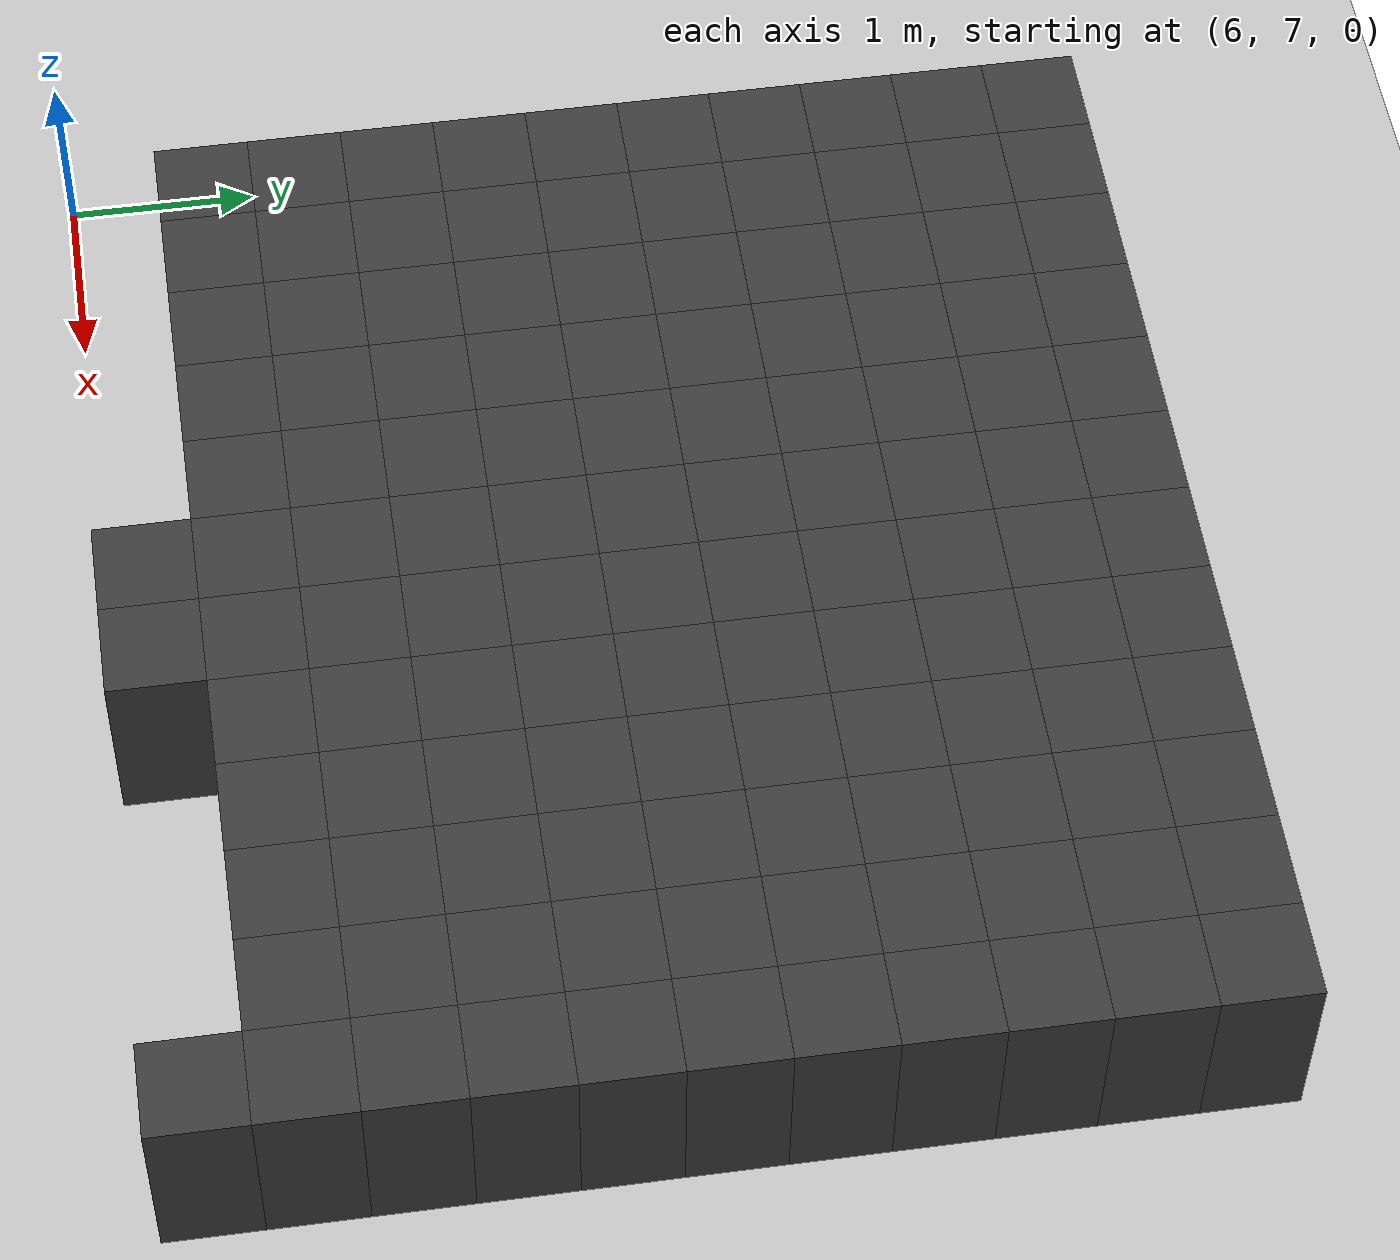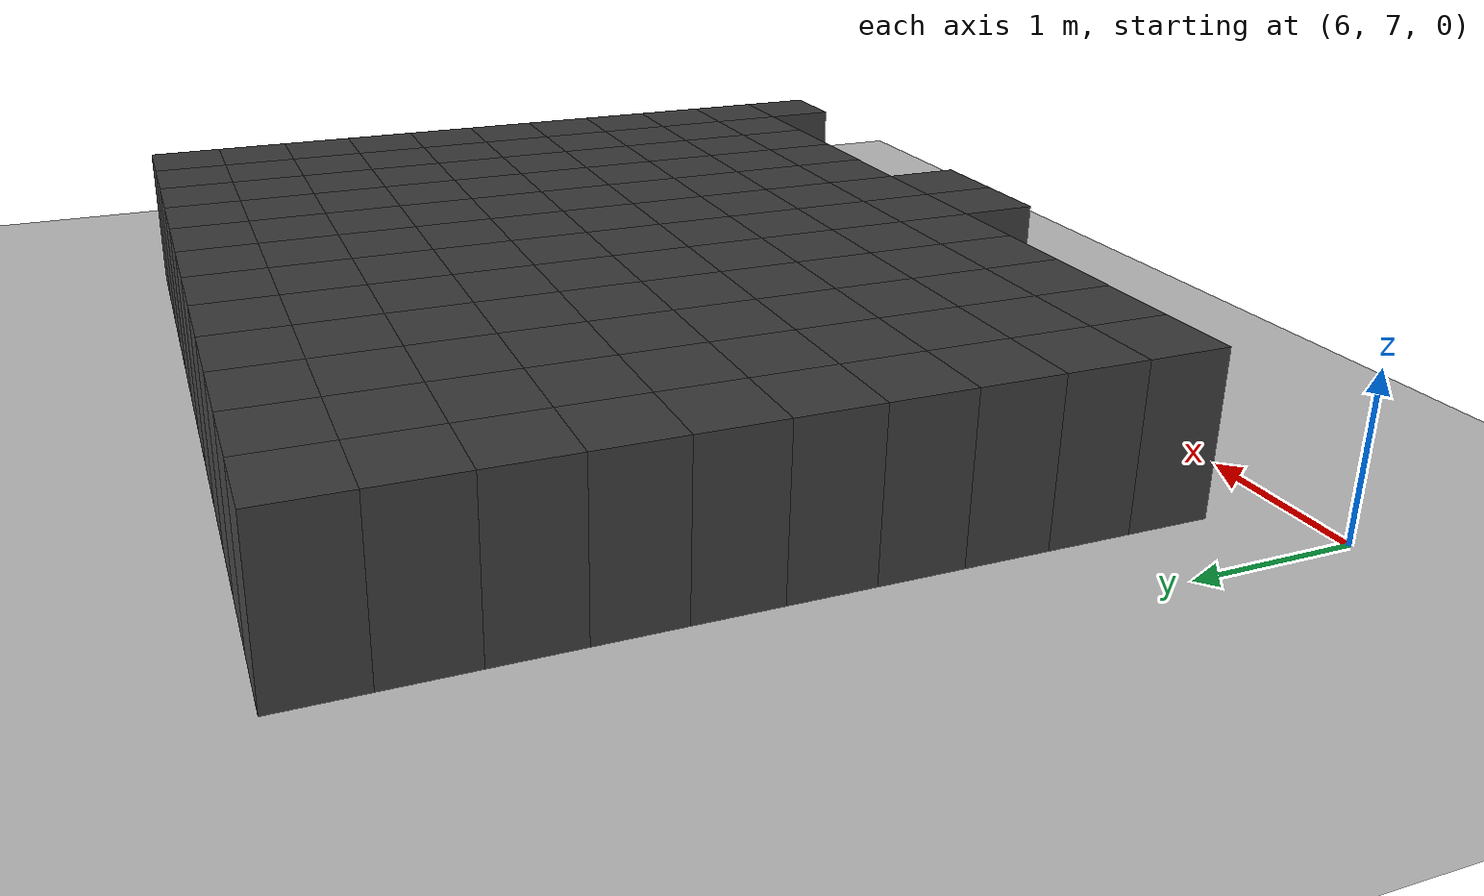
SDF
<sdf version="1.7">
 <world name="map_14074">
  <model name="ground_plane">
   <static>true</static>
   <link name="link">
    <collision name="collision">
     <geometry><plane><normal>0 0 1</normal><size>200 200</size></plane></geometry>
    </collision>
    <visual name="visual">
     <geometry><plane><normal>0 0 1</normal><size>200 200</size></plane></geometry>
     <material><ambient>0.8 0.8 0.8 1</ambient><diffuse>0.8 0.8 0.8 1</diffuse></material>
    </visual>
   </link>
  </model>
  <model name="maze_environment">
   <static>true</static>
   <link name="wall_38">
    <pose>6.750 12.250 0.500 0 0 0</pose>
    <collision name="col"><geometry><box><size>0.5 0.5 1.0</size></box></geometry></collision>
    <visual name="vis">
     <geometry><box><size>0.5 0.5 1.0</size></box></geometry>
     <material><ambient>0.15 0.15 0.15 1</ambient><diffuse>0.25 0.25 0.25 1</diffuse></material>
    </visual>
   </link>
   <link name="wall_39">
    <pose>7.250 12.250 0.500 0 0 0</pose>
    <collision name="col"><geometry><box><size>0.5 0.5 1.0</size></box></geometry></collision>
    <visual name="vis">
     <geometry><box><size>0.5 0.5 1.0</size></box></geometry>
     <material><ambient>0.15 0.15 0.15 1</ambient><diffuse>0.25 0.25 0.25 1</diffuse></material>
    </visual>
   </link>
   <link name="wall_40">
    <pose>7.750 12.250 0.500 0 0 0</pose>
    <collision name="col"><geometry><box><size>0.5 0.5 1.0</size></box></geometry></collision>
    <visual name="vis">
     <geometry><box><size>0.5 0.5 1.0</size></box></geometry>
     <material><ambient>0.15 0.15 0.15 1</ambient><diffuse>0.25 0.25 0.25 1</diffuse></material>
    </visual>
   </link>
   <link name="wall_41">
    <pose>8.250 12.250 0.500 0 0 0</pose>
    <collision name="col"><geometry><box><size>0.5 0.5 1.0</size></box></geometry></collision>
    <visual name="vis">
     <geometry><box><size>0.5 0.5 1.0</size></box></geometry>
     <material><ambient>0.15 0.15 0.15 1</ambient><diffuse>0.25 0.25 0.25 1</diffuse></material>
    </visual>
   </link>
   <link name="wall_42">
    <pose>8.750 12.250 0.500 0 0 0</pose>
    <collision name="col"><geometry><box><size>0.5 0.5 1.0</size></box></geometry></collision>
    <visual name="vis">
     <geometry><box><size>0.5 0.5 1.0</size></box></geometry>
     <material><ambient>0.15 0.15 0.15 1</ambient><diffuse>0.25 0.25 0.25 1</diffuse></material>
    </visual>
   </link>
   <link name="wall_43">
    <pose>9.250 12.250 0.500 0 0 0</pose>
    <collision name="col"><geometry><box><size>0.5 0.5 1.0</size></box></geometry></collision>
    <visual name="vis">
     <geometry><box><size>0.5 0.5 1.0</size></box></geometry>
     <material><ambient>0.15 0.15 0.15 1</ambient><diffuse>0.25 0.25 0.25 1</diffuse></material>
    </visual>
   </link>
   <link name="wall_44">
    <pose>9.750 12.250 0.500 0 0 0</pose>
    <collision name="col"><geometry><box><size>0.5 0.5 1.0</size></box></geometry></collision>
    <visual name="vis">
     <geometry><box><size>0.5 0.5 1.0</size></box></geometry>
     <material><ambient>0.15 0.15 0.15 1</ambient><diffuse>0.25 0.25 0.25 1</diffuse></material>
    </visual>
   </link>
   <link name="wall_45">
    <pose>10.250 12.250 0.500 0 0 0</pose>
    <collision name="col"><geometry><box><size>0.5 0.5 1.0</size></box></geometry></collision>
    <visual name="vis">
     <geometry><box><size>0.5 0.5 1.0</size></box></geometry>
     <material><ambient>0.15 0.15 0.15 1</ambient><diffuse>0.25 0.25 0.25 1</diffuse></material>
    </visual>
   </link>
   <link name="wall_46">
    <pose>10.750 12.250 0.500 0 0 0</pose>
    <collision name="col"><geometry><box><size>0.5 0.5 1.0</size></box></geometry></collision>
    <visual name="vis">
     <geometry><box><size>0.5 0.5 1.0</size></box></geometry>
     <material><ambient>0.15 0.15 0.15 1</ambient><diffuse>0.25 0.25 0.25 1</diffuse></material>
    </visual>
   </link>
   <link name="wall_47">
    <pose>11.250 12.250 0.500 0 0 0</pose>
    <collision name="col"><geometry><box><size>0.5 0.5 1.0</size></box></geometry></collision>
    <visual name="vis">
     <geometry><box><size>0.5 0.5 1.0</size></box></geometry>
     <material><ambient>0.15 0.15 0.15 1</ambient><diffuse>0.25 0.25 0.25 1</diffuse></material>
    </visual>
   </link>
   <link name="wall_48">
    <pose>11.750 12.250 0.500 0 0 0</pose>
    <collision name="col"><geometry><box><size>0.5 0.5 1.0</size></box></geometry></collision>
    <visual name="vis">
     <geometry><box><size>0.5 0.5 1.0</size></box></geometry>
     <material><ambient>0.15 0.15 0.15 1</ambient><diffuse>0.25 0.25 0.25 1</diffuse></material>
    </visual>
   </link>
   <link name="wall_49">
    <pose>12.250 12.250 0.500 0 0 0</pose>
    <collision name="col"><geometry><box><size>0.5 0.5 1.0</size></box></geometry></collision>
    <visual name="vis">
     <geometry><box><size>0.5 0.5 1.0</size></box></geometry>
     <material><ambient>0.15 0.15 0.15 1</ambient><diffuse>0.25 0.25 0.25 1</diffuse></material>
    </visual>
   </link>
   <link name="wall_85">
    <pose>6.750 11.750 0.500 0 0 0</pose>
    <collision name="col"><geometry><box><size>0.5 0.5 1.0</size></box></geometry></collision>
    <visual name="vis">
     <geometry><box><size>0.5 0.5 1.0</size></box></geometry>
     <material><ambient>0.15 0.15 0.15 1</ambient><diffuse>0.25 0.25 0.25 1</diffuse></material>
    </visual>
   </link>
   <link name="wall_86">
    <pose>7.250 11.750 0.500 0 0 0</pose>
    <collision name="col"><geometry><box><size>0.5 0.5 1.0</size></box></geometry></collision>
    <visual name="vis">
     <geometry><box><size>0.5 0.5 1.0</size></box></geometry>
     <material><ambient>0.15 0.15 0.15 1</ambient><diffuse>0.25 0.25 0.25 1</diffuse></material>
    </visual>
   </link>
   <link name="wall_87">
    <pose>7.750 11.750 0.500 0 0 0</pose>
    <collision name="col"><geometry><box><size>0.5 0.5 1.0</size></box></geometry></collision>
    <visual name="vis">
     <geometry><box><size>0.5 0.5 1.0</size></box></geometry>
     <material><ambient>0.15 0.15 0.15 1</ambient><diffuse>0.25 0.25 0.25 1</diffuse></material>
    </visual>
   </link>
   <link name="wall_88">
    <pose>8.250 11.750 0.500 0 0 0</pose>
    <collision name="col"><geometry><box><size>0.5 0.5 1.0</size></box></geometry></collision>
    <visual name="vis">
     <geometry><box><size>0.5 0.5 1.0</size></box></geometry>
     <material><ambient>0.15 0.15 0.15 1</ambient><diffuse>0.25 0.25 0.25 1</diffuse></material>
    </visual>
   </link>
   <link name="wall_89">
    <pose>8.750 11.750 0.500 0 0 0</pose>
    <collision name="col"><geometry><box><size>0.5 0.5 1.0</size></box></geometry></collision>
    <visual name="vis">
     <geometry><box><size>0.5 0.5 1.0</size></box></geometry>
     <material><ambient>0.15 0.15 0.15 1</ambient><diffuse>0.25 0.25 0.25 1</diffuse></material>
    </visual>
   </link>
   <link name="wall_90">
    <pose>9.250 11.750 0.500 0 0 0</pose>
    <collision name="col"><geometry><box><size>0.5 0.5 1.0</size></box></geometry></collision>
    <visual name="vis">
     <geometry><box><size>0.5 0.5 1.0</size></box></geometry>
     <material><ambient>0.15 0.15 0.15 1</ambient><diffuse>0.25 0.25 0.25 1</diffuse></material>
    </visual>
   </link>
   <link name="wall_91">
    <pose>9.750 11.750 0.500 0 0 0</pose>
    <collision name="col"><geometry><box><size>0.5 0.5 1.0</size></box></geometry></collision>
    <visual name="vis">
     <geometry><box><size>0.5 0.5 1.0</size></box></geometry>
     <material><ambient>0.15 0.15 0.15 1</ambient><diffuse>0.25 0.25 0.25 1</diffuse></material>
    </visual>
   </link>
   <link name="wall_92">
    <pose>10.250 11.750 0.500 0 0 0</pose>
    <collision name="col"><geometry><box><size>0.5 0.5 1.0</size></box></geometry></collision>
    <visual name="vis">
     <geometry><box><size>0.5 0.5 1.0</size></box></geometry>
     <material><ambient>0.15 0.15 0.15 1</ambient><diffuse>0.25 0.25 0.25 1</diffuse></material>
    </visual>
   </link>
   <link name="wall_93">
    <pose>10.750 11.750 0.500 0 0 0</pose>
    <collision name="col"><geometry><box><size>0.5 0.5 1.0</size></box></geometry></collision>
    <visual name="vis">
     <geometry><box><size>0.5 0.5 1.0</size></box></geometry>
     <material><ambient>0.15 0.15 0.15 1</ambient><diffuse>0.25 0.25 0.25 1</diffuse></material>
    </visual>
   </link>
   <link name="wall_94">
    <pose>11.250 11.750 0.500 0 0 0</pose>
    <collision name="col"><geometry><box><size>0.5 0.5 1.0</size></box></geometry></collision>
    <visual name="vis">
     <geometry><box><size>0.5 0.5 1.0</size></box></geometry>
     <material><ambient>0.15 0.15 0.15 1</ambient><diffuse>0.25 0.25 0.25 1</diffuse></material>
    </visual>
   </link>
   <link name="wall_95">
    <pose>11.750 11.750 0.500 0 0 0</pose>
    <collision name="col"><geometry><box><size>0.5 0.5 1.0</size></box></geometry></collision>
    <visual name="vis">
     <geometry><box><size>0.5 0.5 1.0</size></box></geometry>
     <material><ambient>0.15 0.15 0.15 1</ambient><diffuse>0.25 0.25 0.25 1</diffuse></material>
    </visual>
   </link>
   <link name="wall_96">
    <pose>12.250 11.750 0.500 0 0 0</pose>
    <collision name="col"><geometry><box><size>0.5 0.5 1.0</size></box></geometry></collision>
    <visual name="vis">
     <geometry><box><size>0.5 0.5 1.0</size></box></geometry>
     <material><ambient>0.15 0.15 0.15 1</ambient><diffuse>0.25 0.25 0.25 1</diffuse></material>
    </visual>
   </link>
   <link name="wall_132">
    <pose>6.750 11.250 0.500 0 0 0</pose>
    <collision name="col"><geometry><box><size>0.5 0.5 1.0</size></box></geometry></collision>
    <visual name="vis">
     <geometry><box><size>0.5 0.5 1.0</size></box></geometry>
     <material><ambient>0.15 0.15 0.15 1</ambient><diffuse>0.25 0.25 0.25 1</diffuse></material>
    </visual>
   </link>
   <link name="wall_133">
    <pose>7.250 11.250 0.500 0 0 0</pose>
    <collision name="col"><geometry><box><size>0.5 0.5 1.0</size></box></geometry></collision>
    <visual name="vis">
     <geometry><box><size>0.5 0.5 1.0</size></box></geometry>
     <material><ambient>0.15 0.15 0.15 1</ambient><diffuse>0.25 0.25 0.25 1</diffuse></material>
    </visual>
   </link>
   <link name="wall_134">
    <pose>7.750 11.250 0.500 0 0 0</pose>
    <collision name="col"><geometry><box><size>0.5 0.5 1.0</size></box></geometry></collision>
    <visual name="vis">
     <geometry><box><size>0.5 0.5 1.0</size></box></geometry>
     <material><ambient>0.15 0.15 0.15 1</ambient><diffuse>0.25 0.25 0.25 1</diffuse></material>
    </visual>
   </link>
   <link name="wall_135">
    <pose>8.250 11.250 0.500 0 0 0</pose>
    <collision name="col"><geometry><box><size>0.5 0.5 1.0</size></box></geometry></collision>
    <visual name="vis">
     <geometry><box><size>0.5 0.5 1.0</size></box></geometry>
     <material><ambient>0.15 0.15 0.15 1</ambient><diffuse>0.25 0.25 0.25 1</diffuse></material>
    </visual>
   </link>
   <link name="wall_136">
    <pose>8.750 11.250 0.500 0 0 0</pose>
    <collision name="col"><geometry><box><size>0.5 0.5 1.0</size></box></geometry></collision>
    <visual name="vis">
     <geometry><box><size>0.5 0.5 1.0</size></box></geometry>
     <material><ambient>0.15 0.15 0.15 1</ambient><diffuse>0.25 0.25 0.25 1</diffuse></material>
    </visual>
   </link>
   <link name="wall_137">
    <pose>9.250 11.250 0.500 0 0 0</pose>
    <collision name="col"><geometry><box><size>0.5 0.5 1.0</size></box></geometry></collision>
    <visual name="vis">
     <geometry><box><size>0.5 0.5 1.0</size></box></geometry>
     <material><ambient>0.15 0.15 0.15 1</ambient><diffuse>0.25 0.25 0.25 1</diffuse></material>
    </visual>
   </link>
   <link name="wall_138">
    <pose>9.750 11.250 0.500 0 0 0</pose>
    <collision name="col"><geometry><box><size>0.5 0.5 1.0</size></box></geometry></collision>
    <visual name="vis">
     <geometry><box><size>0.5 0.5 1.0</size></box></geometry>
     <material><ambient>0.15 0.15 0.15 1</ambient><diffuse>0.25 0.25 0.25 1</diffuse></material>
    </visual>
   </link>
   <link name="wall_139">
    <pose>10.250 11.250 0.500 0 0 0</pose>
    <collision name="col"><geometry><box><size>0.5 0.5 1.0</size></box></geometry></collision>
    <visual name="vis">
     <geometry><box><size>0.5 0.5 1.0</size></box></geometry>
     <material><ambient>0.15 0.15 0.15 1</ambient><diffuse>0.25 0.25 0.25 1</diffuse></material>
    </visual>
   </link>
   <link name="wall_140">
    <pose>10.750 11.250 0.500 0 0 0</pose>
    <collision name="col"><geometry><box><size>0.5 0.5 1.0</size></box></geometry></collision>
    <visual name="vis">
     <geometry><box><size>0.5 0.5 1.0</size></box></geometry>
     <material><ambient>0.15 0.15 0.15 1</ambient><diffuse>0.25 0.25 0.25 1</diffuse></material>
    </visual>
   </link>
   <link name="wall_141">
    <pose>11.250 11.250 0.500 0 0 0</pose>
    <collision name="col"><geometry><box><size>0.5 0.5 1.0</size></box></geometry></collision>
    <visual name="vis">
     <geometry><box><size>0.5 0.5 1.0</size></box></geometry>
     <material><ambient>0.15 0.15 0.15 1</ambient><diffuse>0.25 0.25 0.25 1</diffuse></material>
    </visual>
   </link>
   <link name="wall_142">
    <pose>11.750 11.250 0.500 0 0 0</pose>
    <collision name="col"><geometry><box><size>0.5 0.5 1.0</size></box></geometry></collision>
    <visual name="vis">
     <geometry><box><size>0.5 0.5 1.0</size></box></geometry>
     <material><ambient>0.15 0.15 0.15 1</ambient><diffuse>0.25 0.25 0.25 1</diffuse></material>
    </visual>
   </link>
   <link name="wall_143">
    <pose>12.250 11.250 0.500 0 0 0</pose>
    <collision name="col"><geometry><box><size>0.5 0.5 1.0</size></box></geometry></collision>
    <visual name="vis">
     <geometry><box><size>0.5 0.5 1.0</size></box></geometry>
     <material><ambient>0.15 0.15 0.15 1</ambient><diffuse>0.25 0.25 0.25 1</diffuse></material>
    </visual>
   </link>
   <link name="wall_179">
    <pose>6.750 10.750 0.500 0 0 0</pose>
    <collision name="col"><geometry><box><size>0.5 0.5 1.0</size></box></geometry></collision>
    <visual name="vis">
     <geometry><box><size>0.5 0.5 1.0</size></box></geometry>
     <material><ambient>0.15 0.15 0.15 1</ambient><diffuse>0.25 0.25 0.25 1</diffuse></material>
    </visual>
   </link>
   <link name="wall_180">
    <pose>7.250 10.750 0.500 0 0 0</pose>
    <collision name="col"><geometry><box><size>0.5 0.5 1.0</size></box></geometry></collision>
    <visual name="vis">
     <geometry><box><size>0.5 0.5 1.0</size></box></geometry>
     <material><ambient>0.15 0.15 0.15 1</ambient><diffuse>0.25 0.25 0.25 1</diffuse></material>
    </visual>
   </link>
   <link name="wall_181">
    <pose>7.750 10.750 0.500 0 0 0</pose>
    <collision name="col"><geometry><box><size>0.5 0.5 1.0</size></box></geometry></collision>
    <visual name="vis">
     <geometry><box><size>0.5 0.5 1.0</size></box></geometry>
     <material><ambient>0.15 0.15 0.15 1</ambient><diffuse>0.25 0.25 0.25 1</diffuse></material>
    </visual>
   </link>
   <link name="wall_182">
    <pose>8.250 10.750 0.500 0 0 0</pose>
    <collision name="col"><geometry><box><size>0.5 0.5 1.0</size></box></geometry></collision>
    <visual name="vis">
     <geometry><box><size>0.5 0.5 1.0</size></box></geometry>
     <material><ambient>0.15 0.15 0.15 1</ambient><diffuse>0.25 0.25 0.25 1</diffuse></material>
    </visual>
   </link>
   <link name="wall_183">
    <pose>8.750 10.750 0.500 0 0 0</pose>
    <collision name="col"><geometry><box><size>0.5 0.5 1.0</size></box></geometry></collision>
    <visual name="vis">
     <geometry><box><size>0.5 0.5 1.0</size></box></geometry>
     <material><ambient>0.15 0.15 0.15 1</ambient><diffuse>0.25 0.25 0.25 1</diffuse></material>
    </visual>
   </link>
   <link name="wall_184">
    <pose>9.250 10.750 0.500 0 0 0</pose>
    <collision name="col"><geometry><box><size>0.5 0.5 1.0</size></box></geometry></collision>
    <visual name="vis">
     <geometry><box><size>0.5 0.5 1.0</size></box></geometry>
     <material><ambient>0.15 0.15 0.15 1</ambient><diffuse>0.25 0.25 0.25 1</diffuse></material>
    </visual>
   </link>
   <link name="wall_185">
    <pose>9.750 10.750 0.500 0 0 0</pose>
    <collision name="col"><geometry><box><size>0.5 0.5 1.0</size></box></geometry></collision>
    <visual name="vis">
     <geometry><box><size>0.5 0.5 1.0</size></box></geometry>
     <material><ambient>0.15 0.15 0.15 1</ambient><diffuse>0.25 0.25 0.25 1</diffuse></material>
    </visual>
   </link>
   <link name="wall_186">
    <pose>10.250 10.750 0.500 0 0 0</pose>
    <collision name="col"><geometry><box><size>0.5 0.5 1.0</size></box></geometry></collision>
    <visual name="vis">
     <geometry><box><size>0.5 0.5 1.0</size></box></geometry>
     <material><ambient>0.15 0.15 0.15 1</ambient><diffuse>0.25 0.25 0.25 1</diffuse></material>
    </visual>
   </link>
   <link name="wall_187">
    <pose>10.750 10.750 0.500 0 0 0</pose>
    <collision name="col"><geometry><box><size>0.5 0.5 1.0</size></box></geometry></collision>
    <visual name="vis">
     <geometry><box><size>0.5 0.5 1.0</size></box></geometry>
     <material><ambient>0.15 0.15 0.15 1</ambient><diffuse>0.25 0.25 0.25 1</diffuse></material>
    </visual>
   </link>
   <link name="wall_188">
    <pose>11.250 10.750 0.500 0 0 0</pose>
    <collision name="col"><geometry><box><size>0.5 0.5 1.0</size></box></geometry></collision>
    <visual name="vis">
     <geometry><box><size>0.5 0.5 1.0</size></box></geometry>
     <material><ambient>0.15 0.15 0.15 1</ambient><diffuse>0.25 0.25 0.25 1</diffuse></material>
    </visual>
   </link>
   <link name="wall_189">
    <pose>11.750 10.750 0.500 0 0 0</pose>
    <collision name="col"><geometry><box><size>0.5 0.5 1.0</size></box></geometry></collision>
    <visual name="vis">
     <geometry><box><size>0.5 0.5 1.0</size></box></geometry>
     <material><ambient>0.15 0.15 0.15 1</ambient><diffuse>0.25 0.25 0.25 1</diffuse></material>
    </visual>
   </link>
   <link name="wall_190">
    <pose>12.250 10.750 0.500 0 0 0</pose>
    <collision name="col"><geometry><box><size>0.5 0.5 1.0</size></box></geometry></collision>
    <visual name="vis">
     <geometry><box><size>0.5 0.5 1.0</size></box></geometry>
     <material><ambient>0.15 0.15 0.15 1</ambient><diffuse>0.25 0.25 0.25 1</diffuse></material>
    </visual>
   </link>
   <link name="wall_228">
    <pose>6.750 10.250 0.500 0 0 0</pose>
    <collision name="col"><geometry><box><size>0.5 0.5 1.0</size></box></geometry></collision>
    <visual name="vis">
     <geometry><box><size>0.5 0.5 1.0</size></box></geometry>
     <material><ambient>0.15 0.15 0.15 1</ambient><diffuse>0.25 0.25 0.25 1</diffuse></material>
    </visual>
   </link>
   <link name="wall_229">
    <pose>7.250 10.250 0.500 0 0 0</pose>
    <collision name="col"><geometry><box><size>0.5 0.5 1.0</size></box></geometry></collision>
    <visual name="vis">
     <geometry><box><size>0.5 0.5 1.0</size></box></geometry>
     <material><ambient>0.15 0.15 0.15 1</ambient><diffuse>0.25 0.25 0.25 1</diffuse></material>
    </visual>
   </link>
   <link name="wall_230">
    <pose>7.750 10.250 0.500 0 0 0</pose>
    <collision name="col"><geometry><box><size>0.5 0.5 1.0</size></box></geometry></collision>
    <visual name="vis">
     <geometry><box><size>0.5 0.5 1.0</size></box></geometry>
     <material><ambient>0.15 0.15 0.15 1</ambient><diffuse>0.25 0.25 0.25 1</diffuse></material>
    </visual>
   </link>
   <link name="wall_231">
    <pose>8.250 10.250 0.500 0 0 0</pose>
    <collision name="col"><geometry><box><size>0.5 0.5 1.0</size></box></geometry></collision>
    <visual name="vis">
     <geometry><box><size>0.5 0.5 1.0</size></box></geometry>
     <material><ambient>0.15 0.15 0.15 1</ambient><diffuse>0.25 0.25 0.25 1</diffuse></material>
    </visual>
   </link>
   <link name="wall_232">
    <pose>8.750 10.250 0.500 0 0 0</pose>
    <collision name="col"><geometry><box><size>0.5 0.5 1.0</size></box></geometry></collision>
    <visual name="vis">
     <geometry><box><size>0.5 0.5 1.0</size></box></geometry>
     <material><ambient>0.15 0.15 0.15 1</ambient><diffuse>0.25 0.25 0.25 1</diffuse></material>
    </visual>
   </link>
   <link name="wall_233">
    <pose>9.250 10.250 0.500 0 0 0</pose>
    <collision name="col"><geometry><box><size>0.5 0.5 1.0</size></box></geometry></collision>
    <visual name="vis">
     <geometry><box><size>0.5 0.5 1.0</size></box></geometry>
     <material><ambient>0.15 0.15 0.15 1</ambient><diffuse>0.25 0.25 0.25 1</diffuse></material>
    </visual>
   </link>
   <link name="wall_234">
    <pose>9.750 10.250 0.500 0 0 0</pose>
    <collision name="col"><geometry><box><size>0.5 0.5 1.0</size></box></geometry></collision>
    <visual name="vis">
     <geometry><box><size>0.5 0.5 1.0</size></box></geometry>
     <material><ambient>0.15 0.15 0.15 1</ambient><diffuse>0.25 0.25 0.25 1</diffuse></material>
    </visual>
   </link>
   <link name="wall_235">
    <pose>10.250 10.250 0.500 0 0 0</pose>
    <collision name="col"><geometry><box><size>0.5 0.5 1.0</size></box></geometry></collision>
    <visual name="vis">
     <geometry><box><size>0.5 0.5 1.0</size></box></geometry>
     <material><ambient>0.15 0.15 0.15 1</ambient><diffuse>0.25 0.25 0.25 1</diffuse></material>
    </visual>
   </link>
   <link name="wall_236">
    <pose>10.750 10.250 0.500 0 0 0</pose>
    <collision name="col"><geometry><box><size>0.5 0.5 1.0</size></box></geometry></collision>
    <visual name="vis">
     <geometry><box><size>0.5 0.5 1.0</size></box></geometry>
     <material><ambient>0.15 0.15 0.15 1</ambient><diffuse>0.25 0.25 0.25 1</diffuse></material>
    </visual>
   </link>
   <link name="wall_237">
    <pose>11.250 10.250 0.500 0 0 0</pose>
    <collision name="col"><geometry><box><size>0.5 0.5 1.0</size></box></geometry></collision>
    <visual name="vis">
     <geometry><box><size>0.5 0.5 1.0</size></box></geometry>
     <material><ambient>0.15 0.15 0.15 1</ambient><diffuse>0.25 0.25 0.25 1</diffuse></material>
    </visual>
   </link>
   <link name="wall_238">
    <pose>11.750 10.250 0.500 0 0 0</pose>
    <collision name="col"><geometry><box><size>0.5 0.5 1.0</size></box></geometry></collision>
    <visual name="vis">
     <geometry><box><size>0.5 0.5 1.0</size></box></geometry>
     <material><ambient>0.15 0.15 0.15 1</ambient><diffuse>0.25 0.25 0.25 1</diffuse></material>
    </visual>
   </link>
   <link name="wall_239">
    <pose>12.250 10.250 0.500 0 0 0</pose>
    <collision name="col"><geometry><box><size>0.5 0.5 1.0</size></box></geometry></collision>
    <visual name="vis">
     <geometry><box><size>0.5 0.5 1.0</size></box></geometry>
     <material><ambient>0.15 0.15 0.15 1</ambient><diffuse>0.25 0.25 0.25 1</diffuse></material>
    </visual>
   </link>
   <link name="wall_277">
    <pose>6.750 9.750 0.500 0 0 0</pose>
    <collision name="col"><geometry><box><size>0.5 0.5 1.0</size></box></geometry></collision>
    <visual name="vis">
     <geometry><box><size>0.5 0.5 1.0</size></box></geometry>
     <material><ambient>0.15 0.15 0.15 1</ambient><diffuse>0.25 0.25 0.25 1</diffuse></material>
    </visual>
   </link>
   <link name="wall_278">
    <pose>7.250 9.750 0.500 0 0 0</pose>
    <collision name="col"><geometry><box><size>0.5 0.5 1.0</size></box></geometry></collision>
    <visual name="vis">
     <geometry><box><size>0.5 0.5 1.0</size></box></geometry>
     <material><ambient>0.15 0.15 0.15 1</ambient><diffuse>0.25 0.25 0.25 1</diffuse></material>
    </visual>
   </link>
   <link name="wall_279">
    <pose>7.750 9.750 0.500 0 0 0</pose>
    <collision name="col"><geometry><box><size>0.5 0.5 1.0</size></box></geometry></collision>
    <visual name="vis">
     <geometry><box><size>0.5 0.5 1.0</size></box></geometry>
     <material><ambient>0.15 0.15 0.15 1</ambient><diffuse>0.25 0.25 0.25 1</diffuse></material>
    </visual>
   </link>
   <link name="wall_280">
    <pose>8.250 9.750 0.500 0 0 0</pose>
    <collision name="col"><geometry><box><size>0.5 0.5 1.0</size></box></geometry></collision>
    <visual name="vis">
     <geometry><box><size>0.5 0.5 1.0</size></box></geometry>
     <material><ambient>0.15 0.15 0.15 1</ambient><diffuse>0.25 0.25 0.25 1</diffuse></material>
    </visual>
   </link>
   <link name="wall_281">
    <pose>8.750 9.750 0.500 0 0 0</pose>
    <collision name="col"><geometry><box><size>0.5 0.5 1.0</size></box></geometry></collision>
    <visual name="vis">
     <geometry><box><size>0.5 0.5 1.0</size></box></geometry>
     <material><ambient>0.15 0.15 0.15 1</ambient><diffuse>0.25 0.25 0.25 1</diffuse></material>
    </visual>
   </link>
   <link name="wall_282">
    <pose>9.250 9.750 0.500 0 0 0</pose>
    <collision name="col"><geometry><box><size>0.5 0.5 1.0</size></box></geometry></collision>
    <visual name="vis">
     <geometry><box><size>0.5 0.5 1.0</size></box></geometry>
     <material><ambient>0.15 0.15 0.15 1</ambient><diffuse>0.25 0.25 0.25 1</diffuse></material>
    </visual>
   </link>
   <link name="wall_283">
    <pose>9.750 9.750 0.500 0 0 0</pose>
    <collision name="col"><geometry><box><size>0.5 0.5 1.0</size></box></geometry></collision>
    <visual name="vis">
     <geometry><box><size>0.5 0.5 1.0</size></box></geometry>
     <material><ambient>0.15 0.15 0.15 1</ambient><diffuse>0.25 0.25 0.25 1</diffuse></material>
    </visual>
   </link>
   <link name="wall_284">
    <pose>10.250 9.750 0.500 0 0 0</pose>
    <collision name="col"><geometry><box><size>0.5 0.5 1.0</size></box></geometry></collision>
    <visual name="vis">
     <geometry><box><size>0.5 0.5 1.0</size></box></geometry>
     <material><ambient>0.15 0.15 0.15 1</ambient><diffuse>0.25 0.25 0.25 1</diffuse></material>
    </visual>
   </link>
   <link name="wall_285">
    <pose>10.750 9.750 0.500 0 0 0</pose>
    <collision name="col"><geometry><box><size>0.5 0.5 1.0</size></box></geometry></collision>
    <visual name="vis">
     <geometry><box><size>0.5 0.5 1.0</size></box></geometry>
     <material><ambient>0.15 0.15 0.15 1</ambient><diffuse>0.25 0.25 0.25 1</diffuse></material>
    </visual>
   </link>
   <link name="wall_286">
    <pose>11.250 9.750 0.500 0 0 0</pose>
    <collision name="col"><geometry><box><size>0.5 0.5 1.0</size></box></geometry></collision>
    <visual name="vis">
     <geometry><box><size>0.5 0.5 1.0</size></box></geometry>
     <material><ambient>0.15 0.15 0.15 1</ambient><diffuse>0.25 0.25 0.25 1</diffuse></material>
    </visual>
   </link>
   <link name="wall_287">
    <pose>11.750 9.750 0.500 0 0 0</pose>
    <collision name="col"><geometry><box><size>0.5 0.5 1.0</size></box></geometry></collision>
    <visual name="vis">
     <geometry><box><size>0.5 0.5 1.0</size></box></geometry>
     <material><ambient>0.15 0.15 0.15 1</ambient><diffuse>0.25 0.25 0.25 1</diffuse></material>
    </visual>
   </link>
   <link name="wall_288">
    <pose>12.250 9.750 0.500 0 0 0</pose>
    <collision name="col"><geometry><box><size>0.5 0.5 1.0</size></box></geometry></collision>
    <visual name="vis">
     <geometry><box><size>0.5 0.5 1.0</size></box></geometry>
     <material><ambient>0.15 0.15 0.15 1</ambient><diffuse>0.25 0.25 0.25 1</diffuse></material>
    </visual>
   </link>
   <link name="wall_326">
    <pose>6.750 9.250 0.500 0 0 0</pose>
    <collision name="col"><geometry><box><size>0.5 0.5 1.0</size></box></geometry></collision>
    <visual name="vis">
     <geometry><box><size>0.5 0.5 1.0</size></box></geometry>
     <material><ambient>0.15 0.15 0.15 1</ambient><diffuse>0.25 0.25 0.25 1</diffuse></material>
    </visual>
   </link>
   <link name="wall_327">
    <pose>7.250 9.250 0.500 0 0 0</pose>
    <collision name="col"><geometry><box><size>0.5 0.5 1.0</size></box></geometry></collision>
    <visual name="vis">
     <geometry><box><size>0.5 0.5 1.0</size></box></geometry>
     <material><ambient>0.15 0.15 0.15 1</ambient><diffuse>0.25 0.25 0.25 1</diffuse></material>
    </visual>
   </link>
   <link name="wall_328">
    <pose>7.750 9.250 0.500 0 0 0</pose>
    <collision name="col"><geometry><box><size>0.5 0.5 1.0</size></box></geometry></collision>
    <visual name="vis">
     <geometry><box><size>0.5 0.5 1.0</size></box></geometry>
     <material><ambient>0.15 0.15 0.15 1</ambient><diffuse>0.25 0.25 0.25 1</diffuse></material>
    </visual>
   </link>
   <link name="wall_329">
    <pose>8.250 9.250 0.500 0 0 0</pose>
    <collision name="col"><geometry><box><size>0.5 0.5 1.0</size></box></geometry></collision>
    <visual name="vis">
     <geometry><box><size>0.5 0.5 1.0</size></box></geometry>
     <material><ambient>0.15 0.15 0.15 1</ambient><diffuse>0.25 0.25 0.25 1</diffuse></material>
    </visual>
   </link>
   <link name="wall_330">
    <pose>8.750 9.250 0.500 0 0 0</pose>
    <collision name="col"><geometry><box><size>0.5 0.5 1.0</size></box></geometry></collision>
    <visual name="vis">
     <geometry><box><size>0.5 0.5 1.0</size></box></geometry>
     <material><ambient>0.15 0.15 0.15 1</ambient><diffuse>0.25 0.25 0.25 1</diffuse></material>
    </visual>
   </link>
   <link name="wall_331">
    <pose>9.250 9.250 0.500 0 0 0</pose>
    <collision name="col"><geometry><box><size>0.5 0.5 1.0</size></box></geometry></collision>
    <visual name="vis">
     <geometry><box><size>0.5 0.5 1.0</size></box></geometry>
     <material><ambient>0.15 0.15 0.15 1</ambient><diffuse>0.25 0.25 0.25 1</diffuse></material>
    </visual>
   </link>
   <link name="wall_332">
    <pose>9.750 9.250 0.500 0 0 0</pose>
    <collision name="col"><geometry><box><size>0.5 0.5 1.0</size></box></geometry></collision>
    <visual name="vis">
     <geometry><box><size>0.5 0.5 1.0</size></box></geometry>
     <material><ambient>0.15 0.15 0.15 1</ambient><diffuse>0.25 0.25 0.25 1</diffuse></material>
    </visual>
   </link>
   <link name="wall_333">
    <pose>10.250 9.250 0.500 0 0 0</pose>
    <collision name="col"><geometry><box><size>0.5 0.5 1.0</size></box></geometry></collision>
    <visual name="vis">
     <geometry><box><size>0.5 0.5 1.0</size></box></geometry>
     <material><ambient>0.15 0.15 0.15 1</ambient><diffuse>0.25 0.25 0.25 1</diffuse></material>
    </visual>
   </link>
   <link name="wall_334">
    <pose>10.750 9.250 0.500 0 0 0</pose>
    <collision name="col"><geometry><box><size>0.5 0.5 1.0</size></box></geometry></collision>
    <visual name="vis">
     <geometry><box><size>0.5 0.5 1.0</size></box></geometry>
     <material><ambient>0.15 0.15 0.15 1</ambient><diffuse>0.25 0.25 0.25 1</diffuse></material>
    </visual>
   </link>
   <link name="wall_335">
    <pose>11.250 9.250 0.500 0 0 0</pose>
    <collision name="col"><geometry><box><size>0.5 0.5 1.0</size></box></geometry></collision>
    <visual name="vis">
     <geometry><box><size>0.5 0.5 1.0</size></box></geometry>
     <material><ambient>0.15 0.15 0.15 1</ambient><diffuse>0.25 0.25 0.25 1</diffuse></material>
    </visual>
   </link>
   <link name="wall_336">
    <pose>11.750 9.250 0.500 0 0 0</pose>
    <collision name="col"><geometry><box><size>0.5 0.5 1.0</size></box></geometry></collision>
    <visual name="vis">
     <geometry><box><size>0.5 0.5 1.0</size></box></geometry>
     <material><ambient>0.15 0.15 0.15 1</ambient><diffuse>0.25 0.25 0.25 1</diffuse></material>
    </visual>
   </link>
   <link name="wall_337">
    <pose>12.250 9.250 0.500 0 0 0</pose>
    <collision name="col"><geometry><box><size>0.5 0.5 1.0</size></box></geometry></collision>
    <visual name="vis">
     <geometry><box><size>0.5 0.5 1.0</size></box></geometry>
     <material><ambient>0.15 0.15 0.15 1</ambient><diffuse>0.25 0.25 0.25 1</diffuse></material>
    </visual>
   </link>
   <link name="wall_375">
    <pose>6.750 8.750 0.500 0 0 0</pose>
    <collision name="col"><geometry><box><size>0.5 0.5 1.0</size></box></geometry></collision>
    <visual name="vis">
     <geometry><box><size>0.5 0.5 1.0</size></box></geometry>
     <material><ambient>0.15 0.15 0.15 1</ambient><diffuse>0.25 0.25 0.25 1</diffuse></material>
    </visual>
   </link>
   <link name="wall_376">
    <pose>7.250 8.750 0.500 0 0 0</pose>
    <collision name="col"><geometry><box><size>0.5 0.5 1.0</size></box></geometry></collision>
    <visual name="vis">
     <geometry><box><size>0.5 0.5 1.0</size></box></geometry>
     <material><ambient>0.15 0.15 0.15 1</ambient><diffuse>0.25 0.25 0.25 1</diffuse></material>
    </visual>
   </link>
   <link name="wall_377">
    <pose>7.750 8.750 0.500 0 0 0</pose>
    <collision name="col"><geometry><box><size>0.5 0.5 1.0</size></box></geometry></collision>
    <visual name="vis">
     <geometry><box><size>0.5 0.5 1.0</size></box></geometry>
     <material><ambient>0.15 0.15 0.15 1</ambient><diffuse>0.25 0.25 0.25 1</diffuse></material>
    </visual>
   </link>
   <link name="wall_378">
    <pose>8.250 8.750 0.500 0 0 0</pose>
    <collision name="col"><geometry><box><size>0.5 0.5 1.0</size></box></geometry></collision>
    <visual name="vis">
     <geometry><box><size>0.5 0.5 1.0</size></box></geometry>
     <material><ambient>0.15 0.15 0.15 1</ambient><diffuse>0.25 0.25 0.25 1</diffuse></material>
    </visual>
   </link>
   <link name="wall_379">
    <pose>8.750 8.750 0.500 0 0 0</pose>
    <collision name="col"><geometry><box><size>0.5 0.5 1.0</size></box></geometry></collision>
    <visual name="vis">
     <geometry><box><size>0.5 0.5 1.0</size></box></geometry>
     <material><ambient>0.15 0.15 0.15 1</ambient><diffuse>0.25 0.25 0.25 1</diffuse></material>
    </visual>
   </link>
   <link name="wall_380">
    <pose>9.250 8.750 0.500 0 0 0</pose>
    <collision name="col"><geometry><box><size>0.5 0.5 1.0</size></box></geometry></collision>
    <visual name="vis">
     <geometry><box><size>0.5 0.5 1.0</size></box></geometry>
     <material><ambient>0.15 0.15 0.15 1</ambient><diffuse>0.25 0.25 0.25 1</diffuse></material>
    </visual>
   </link>
   <link name="wall_381">
    <pose>9.750 8.750 0.500 0 0 0</pose>
    <collision name="col"><geometry><box><size>0.5 0.5 1.0</size></box></geometry></collision>
    <visual name="vis">
     <geometry><box><size>0.5 0.5 1.0</size></box></geometry>
     <material><ambient>0.15 0.15 0.15 1</ambient><diffuse>0.25 0.25 0.25 1</diffuse></material>
    </visual>
   </link>
   <link name="wall_382">
    <pose>10.250 8.750 0.500 0 0 0</pose>
    <collision name="col"><geometry><box><size>0.5 0.5 1.0</size></box></geometry></collision>
    <visual name="vis">
     <geometry><box><size>0.5 0.5 1.0</size></box></geometry>
     <material><ambient>0.15 0.15 0.15 1</ambient><diffuse>0.25 0.25 0.25 1</diffuse></material>
    </visual>
   </link>
   <link name="wall_383">
    <pose>10.750 8.750 0.500 0 0 0</pose>
    <collision name="col"><geometry><box><size>0.5 0.5 1.0</size></box></geometry></collision>
    <visual name="vis">
     <geometry><box><size>0.5 0.5 1.0</size></box></geometry>
     <material><ambient>0.15 0.15 0.15 1</ambient><diffuse>0.25 0.25 0.25 1</diffuse></material>
    </visual>
   </link>
   <link name="wall_384">
    <pose>11.250 8.750 0.500 0 0 0</pose>
    <collision name="col"><geometry><box><size>0.5 0.5 1.0</size></box></geometry></collision>
    <visual name="vis">
     <geometry><box><size>0.5 0.5 1.0</size></box></geometry>
     <material><ambient>0.15 0.15 0.15 1</ambient><diffuse>0.25 0.25 0.25 1</diffuse></material>
    </visual>
   </link>
   <link name="wall_385">
    <pose>11.750 8.750 0.500 0 0 0</pose>
    <collision name="col"><geometry><box><size>0.5 0.5 1.0</size></box></geometry></collision>
    <visual name="vis">
     <geometry><box><size>0.5 0.5 1.0</size></box></geometry>
     <material><ambient>0.15 0.15 0.15 1</ambient><diffuse>0.25 0.25 0.25 1</diffuse></material>
    </visual>
   </link>
   <link name="wall_386">
    <pose>12.250 8.750 0.500 0 0 0</pose>
    <collision name="col"><geometry><box><size>0.5 0.5 1.0</size></box></geometry></collision>
    <visual name="vis">
     <geometry><box><size>0.5 0.5 1.0</size></box></geometry>
     <material><ambient>0.15 0.15 0.15 1</ambient><diffuse>0.25 0.25 0.25 1</diffuse></material>
    </visual>
   </link>
   <link name="wall_424">
    <pose>6.750 8.250 0.500 0 0 0</pose>
    <collision name="col"><geometry><box><size>0.5 0.5 1.0</size></box></geometry></collision>
    <visual name="vis">
     <geometry><box><size>0.5 0.5 1.0</size></box></geometry>
     <material><ambient>0.15 0.15 0.15 1</ambient><diffuse>0.25 0.25 0.25 1</diffuse></material>
    </visual>
   </link>
   <link name="wall_425">
    <pose>7.250 8.250 0.500 0 0 0</pose>
    <collision name="col"><geometry><box><size>0.5 0.5 1.0</size></box></geometry></collision>
    <visual name="vis">
     <geometry><box><size>0.5 0.5 1.0</size></box></geometry>
     <material><ambient>0.15 0.15 0.15 1</ambient><diffuse>0.25 0.25 0.25 1</diffuse></material>
    </visual>
   </link>
   <link name="wall_426">
    <pose>7.750 8.250 0.500 0 0 0</pose>
    <collision name="col"><geometry><box><size>0.5 0.5 1.0</size></box></geometry></collision>
    <visual name="vis">
     <geometry><box><size>0.5 0.5 1.0</size></box></geometry>
     <material><ambient>0.15 0.15 0.15 1</ambient><diffuse>0.25 0.25 0.25 1</diffuse></material>
    </visual>
   </link>
   <link name="wall_427">
    <pose>8.250 8.250 0.500 0 0 0</pose>
    <collision name="col"><geometry><box><size>0.5 0.5 1.0</size></box></geometry></collision>
    <visual name="vis">
     <geometry><box><size>0.5 0.5 1.0</size></box></geometry>
     <material><ambient>0.15 0.15 0.15 1</ambient><diffuse>0.25 0.25 0.25 1</diffuse></material>
    </visual>
   </link>
   <link name="wall_428">
    <pose>8.750 8.250 0.500 0 0 0</pose>
    <collision name="col"><geometry><box><size>0.5 0.5 1.0</size></box></geometry></collision>
    <visual name="vis">
     <geometry><box><size>0.5 0.5 1.0</size></box></geometry>
     <material><ambient>0.15 0.15 0.15 1</ambient><diffuse>0.25 0.25 0.25 1</diffuse></material>
    </visual>
   </link>
   <link name="wall_429">
    <pose>9.250 8.250 0.500 0 0 0</pose>
    <collision name="col"><geometry><box><size>0.5 0.5 1.0</size></box></geometry></collision>
    <visual name="vis">
     <geometry><box><size>0.5 0.5 1.0</size></box></geometry>
     <material><ambient>0.15 0.15 0.15 1</ambient><diffuse>0.25 0.25 0.25 1</diffuse></material>
    </visual>
   </link>
   <link name="wall_430">
    <pose>9.750 8.250 0.500 0 0 0</pose>
    <collision name="col"><geometry><box><size>0.5 0.5 1.0</size></box></geometry></collision>
    <visual name="vis">
     <geometry><box><size>0.5 0.5 1.0</size></box></geometry>
     <material><ambient>0.15 0.15 0.15 1</ambient><diffuse>0.25 0.25 0.25 1</diffuse></material>
    </visual>
   </link>
   <link name="wall_431">
    <pose>10.250 8.250 0.500 0 0 0</pose>
    <collision name="col"><geometry><box><size>0.5 0.5 1.0</size></box></geometry></collision>
    <visual name="vis">
     <geometry><box><size>0.5 0.5 1.0</size></box></geometry>
     <material><ambient>0.15 0.15 0.15 1</ambient><diffuse>0.25 0.25 0.25 1</diffuse></material>
    </visual>
   </link>
   <link name="wall_432">
    <pose>10.750 8.250 0.500 0 0 0</pose>
    <collision name="col"><geometry><box><size>0.5 0.5 1.0</size></box></geometry></collision>
    <visual name="vis">
     <geometry><box><size>0.5 0.5 1.0</size></box></geometry>
     <material><ambient>0.15 0.15 0.15 1</ambient><diffuse>0.25 0.25 0.25 1</diffuse></material>
    </visual>
   </link>
   <link name="wall_433">
    <pose>11.250 8.250 0.500 0 0 0</pose>
    <collision name="col"><geometry><box><size>0.5 0.5 1.0</size></box></geometry></collision>
    <visual name="vis">
     <geometry><box><size>0.5 0.5 1.0</size></box></geometry>
     <material><ambient>0.15 0.15 0.15 1</ambient><diffuse>0.25 0.25 0.25 1</diffuse></material>
    </visual>
   </link>
   <link name="wall_434">
    <pose>11.750 8.250 0.500 0 0 0</pose>
    <collision name="col"><geometry><box><size>0.5 0.5 1.0</size></box></geometry></collision>
    <visual name="vis">
     <geometry><box><size>0.5 0.5 1.0</size></box></geometry>
     <material><ambient>0.15 0.15 0.15 1</ambient><diffuse>0.25 0.25 0.25 1</diffuse></material>
    </visual>
   </link>
   <link name="wall_435">
    <pose>12.250 8.250 0.500 0 0 0</pose>
    <collision name="col"><geometry><box><size>0.5 0.5 1.0</size></box></geometry></collision>
    <visual name="vis">
     <geometry><box><size>0.5 0.5 1.0</size></box></geometry>
     <material><ambient>0.15 0.15 0.15 1</ambient><diffuse>0.25 0.25 0.25 1</diffuse></material>
    </visual>
   </link>
   <link name="wall_469">
    <pose>6.750 7.750 0.500 0 0 0</pose>
    <collision name="col"><geometry><box><size>0.5 0.5 1.0</size></box></geometry></collision>
    <visual name="vis">
     <geometry><box><size>0.5 0.5 1.0</size></box></geometry>
     <material><ambient>0.15 0.15 0.15 1</ambient><diffuse>0.25 0.25 0.25 1</diffuse></material>
    </visual>
   </link>
   <link name="wall_470">
    <pose>7.250 7.750 0.500 0 0 0</pose>
    <collision name="col"><geometry><box><size>0.5 0.5 1.0</size></box></geometry></collision>
    <visual name="vis">
     <geometry><box><size>0.5 0.5 1.0</size></box></geometry>
     <material><ambient>0.15 0.15 0.15 1</ambient><diffuse>0.25 0.25 0.25 1</diffuse></material>
    </visual>
   </link>
   <link name="wall_471">
    <pose>7.750 7.750 0.500 0 0 0</pose>
    <collision name="col"><geometry><box><size>0.5 0.5 1.0</size></box></geometry></collision>
    <visual name="vis">
     <geometry><box><size>0.5 0.5 1.0</size></box></geometry>
     <material><ambient>0.15 0.15 0.15 1</ambient><diffuse>0.25 0.25 0.25 1</diffuse></material>
    </visual>
   </link>
   <link name="wall_472">
    <pose>8.250 7.750 0.500 0 0 0</pose>
    <collision name="col"><geometry><box><size>0.5 0.5 1.0</size></box></geometry></collision>
    <visual name="vis">
     <geometry><box><size>0.5 0.5 1.0</size></box></geometry>
     <material><ambient>0.15 0.15 0.15 1</ambient><diffuse>0.25 0.25 0.25 1</diffuse></material>
    </visual>
   </link>
   <link name="wall_473">
    <pose>8.750 7.750 0.500 0 0 0</pose>
    <collision name="col"><geometry><box><size>0.5 0.5 1.0</size></box></geometry></collision>
    <visual name="vis">
     <geometry><box><size>0.5 0.5 1.0</size></box></geometry>
     <material><ambient>0.15 0.15 0.15 1</ambient><diffuse>0.25 0.25 0.25 1</diffuse></material>
    </visual>
   </link>
   <link name="wall_474">
    <pose>9.250 7.750 0.500 0 0 0</pose>
    <collision name="col"><geometry><box><size>0.5 0.5 1.0</size></box></geometry></collision>
    <visual name="vis">
     <geometry><box><size>0.5 0.5 1.0</size></box></geometry>
     <material><ambient>0.15 0.15 0.15 1</ambient><diffuse>0.25 0.25 0.25 1</diffuse></material>
    </visual>
   </link>
   <link name="wall_475">
    <pose>9.750 7.750 0.500 0 0 0</pose>
    <collision name="col"><geometry><box><size>0.5 0.5 1.0</size></box></geometry></collision>
    <visual name="vis">
     <geometry><box><size>0.5 0.5 1.0</size></box></geometry>
     <material><ambient>0.15 0.15 0.15 1</ambient><diffuse>0.25 0.25 0.25 1</diffuse></material>
    </visual>
   </link>
   <link name="wall_476">
    <pose>10.250 7.750 0.500 0 0 0</pose>
    <collision name="col"><geometry><box><size>0.5 0.5 1.0</size></box></geometry></collision>
    <visual name="vis">
     <geometry><box><size>0.5 0.5 1.0</size></box></geometry>
     <material><ambient>0.15 0.15 0.15 1</ambient><diffuse>0.25 0.25 0.25 1</diffuse></material>
    </visual>
   </link>
   <link name="wall_477">
    <pose>10.750 7.750 0.500 0 0 0</pose>
    <collision name="col"><geometry><box><size>0.5 0.5 1.0</size></box></geometry></collision>
    <visual name="vis">
     <geometry><box><size>0.5 0.5 1.0</size></box></geometry>
     <material><ambient>0.15 0.15 0.15 1</ambient><diffuse>0.25 0.25 0.25 1</diffuse></material>
    </visual>
   </link>
   <link name="wall_478">
    <pose>11.250 7.750 0.500 0 0 0</pose>
    <collision name="col"><geometry><box><size>0.5 0.5 1.0</size></box></geometry></collision>
    <visual name="vis">
     <geometry><box><size>0.5 0.5 1.0</size></box></geometry>
     <material><ambient>0.15 0.15 0.15 1</ambient><diffuse>0.25 0.25 0.25 1</diffuse></material>
    </visual>
   </link>
   <link name="wall_479">
    <pose>11.750 7.750 0.500 0 0 0</pose>
    <collision name="col"><geometry><box><size>0.5 0.5 1.0</size></box></geometry></collision>
    <visual name="vis">
     <geometry><box><size>0.5 0.5 1.0</size></box></geometry>
     <material><ambient>0.15 0.15 0.15 1</ambient><diffuse>0.25 0.25 0.25 1</diffuse></material>
    </visual>
   </link>
   <link name="wall_480">
    <pose>12.250 7.750 0.500 0 0 0</pose>
    <collision name="col"><geometry><box><size>0.5 0.5 1.0</size></box></geometry></collision>
    <visual name="vis">
     <geometry><box><size>0.5 0.5 1.0</size></box></geometry>
     <material><ambient>0.15 0.15 0.15 1</ambient><diffuse>0.25 0.25 0.25 1</diffuse></material>
    </visual>
   </link>
   <link name="wall_519">
    <pose>9.250 7.250 0.500 0 0 0</pose>
    <collision name="col"><geometry><box><size>0.5 0.5 1.0</size></box></geometry></collision>
    <visual name="vis">
     <geometry><box><size>0.5 0.5 1.0</size></box></geometry>
     <material><ambient>0.15 0.15 0.15 1</ambient><diffuse>0.25 0.25 0.25 1</diffuse></material>
    </visual>
   </link>
   <link name="wall_520">
    <pose>9.750 7.250 0.500 0 0 0</pose>
    <collision name="col"><geometry><box><size>0.5 0.5 1.0</size></box></geometry></collision>
    <visual name="vis">
     <geometry><box><size>0.5 0.5 1.0</size></box></geometry>
     <material><ambient>0.15 0.15 0.15 1</ambient><diffuse>0.25 0.25 0.25 1</diffuse></material>
    </visual>
   </link>
   <link name="wall_521">
    <pose>12.250 7.250 0.500 0 0 0</pose>
    <collision name="col"><geometry><box><size>0.5 0.5 1.0</size></box></geometry></collision>
    <visual name="vis">
     <geometry><box><size>0.5 0.5 1.0</size></box></geometry>
     <material><ambient>0.15 0.15 0.15 1</ambient><diffuse>0.25 0.25 0.25 1</diffuse></material>
    </visual>
   </link>
  </model>
 </world>
</sdf>
